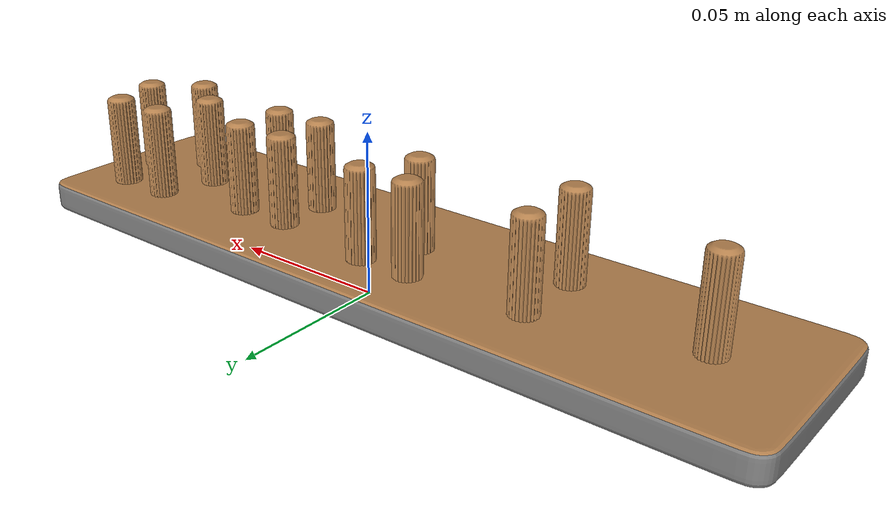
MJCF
<mujoco model="base">
  <compiler angle="radian" meshdir="assets" texturedir="assets" autolimits="true"/>
  <default>
    <default class="visual">
      <geom group="2" type="mesh" contype="0" conaffinity="0" euler="1.57 0 0"/>
    </default>
    <default class="collision">
      <geom group="3" type="mesh" euler="1.57 0 0" density="500" mass="250" friction="10.5 1 0.1" solimp="0.95 0.99 0.001" solref="0.004 1"/>
    </default>
  </default>
  <asset>
    <texture type="2d" name="TexturesCom_Wood_MapleVeneer_512_albedo" file="TexturesCom_Wood_MapleVeneer_512_albedo.png"/>
    <material name="Wood_Pillar_mat" texture="TexturesCom_Wood_MapleVeneer_512_albedo" specular="0.5" shininess="0.5"/>
    <material name="Wood_a_mat" texture="TexturesCom_Wood_MapleVeneer_512_albedo" specular="0.5" shininess="0.5"/>
    <material name="Wood_b_mat" specular="0.5" shininess="0.06311792" rgba="0.500000 0.500000 0.500000 1.000000"/>
    <mesh file="base_0.obj"/>
    <mesh file="base_1.obj"/>
    <mesh file="base_2.obj"/>
    <mesh file="base_collision_0.obj"/>
    <mesh file="base_collision_1.obj"/>
    <mesh file="base_collision_2.obj"/>
    <mesh file="base_collision_3.obj"/>
    <mesh file="base_collision_4.obj" scale="0.7 1.2 0.7"/>
    <mesh file="base_collision_5.obj"/>
    <mesh file="base_collision_6.obj" scale="1 1 1"/>
    <mesh file="base_collision_7.obj"/>
    <mesh file="base_collision_8.obj"/>
    <mesh file="base_collision_9.obj" scale="0.7 1 0.7"/>
    <mesh file="base_collision_10.obj"/>
    <mesh file="base_collision_11.obj" scale="0.8 1 0.8"/>
    <mesh file="base_collision_12.obj" scale="0.8 1 0.8"/>
    <mesh file="base_collision_13.obj"/>
    <mesh file="base_collision_14.obj"/>
    <mesh file="base_collision_15.obj"/>
    <mesh file="base_collision_16.obj"/>
  </asset>
  <worldbody>
    <body name="base">
      <geom mesh="base_0" material="Wood_Pillar_mat" class="visual"/>
      <site name="circle_site" type="box" size=".015 .02 .015" pos="-.105 -0.01 0.03" euler="1.5708 0 0" rgba="1 0 0 0" />
      <site name="triangle_site" type="box" size=".015 .02 .015" pos="-.05 -0.015 0.03" euler="1.5708 0 0" rgba="1 1 0 0" />
      <site name="cube_site" type="box" size=".015 .02 .015" pos="0 -0.01 0.03" euler="1.5708 0 0" rgba="1 1 1 0" />
      <site name="pentagon_site" type="box" size=".015 .02 .015" pos=".05 -0.01 0.03" euler="1.5708 0 0" rgba="0 1 0 0" />
      <site name="rectangle_site" type="box" size=".015 .02 .015" pos=".105 -0.01 0.03" euler="1.5708 0 0" rgba="0 1 1 0" />

      <geom mesh="base_1" material="Wood_a_mat" class="visual"/>
      <geom mesh="base_2" material="Wood_b_mat" class="visual"/>
      <geom mesh="base_collision_0" rgba="0.9630859504259922 0.4774302957265909 0.6799406178539847 1" class="collision"/>
      <body name="triangle">
      <geom mesh="base_collision_4" pos= "-0.0012 -0.006 -0.008" rgba="0.8107316607824177 0.5276161191525742 0.16038745811909683 1" class="collision"/>
      <geom mesh="base_collision_4" pos="0.0075 0.0105 -0.008" rgba="0.8107316607824177 0.5276161191525742 0.16038745811909683 1" class="collision"/>
      <geom mesh="base_collision_4" pos="-0.010 0.0105 -0.008" rgba="0.8107316607824177 0.5276161191525742 0.16038745811909683 1" class="collision"/>
      </body>

      <body name="cube" pos="0.054 -.0045 0">
      <geom mesh="base_collision_4" pos="0.0078 -0.006 -0.008" rgba="0.8107316607824177 0.5276161191525742 0.16038745811909683 1" class="collision"/>
      <geom mesh="base_collision_4" pos="-0.0105 -0.006 -0.008" rgba="0.8107316607824177 0.5276161191525742 0.16038745811909683 1" class="collision"/>
      <geom mesh="base_collision_4" pos="0.008 0.011 -0.008" rgba="0.8107316607824177 0.5276161191525742 0.16038745811909683 1" class="collision"/>
      <geom mesh="base_collision_4" pos="-0.01 0.011 -0.008" rgba="0.8107316607824177 0.5276161191525742 0.16038745811909683 1" class="collision"/>
      </body>

      <body name="circle">
      <geom mesh="base_collision_4" pos="-0.0965 -0.0001 -0.0075" rgba="0.8107316607824177 0.5276161191525742 0.16038745811909683 1" class="collision"/>
      </body>

      <geom mesh="base_collision_7" rgba="0.1007542726995565 0.35798038443467917 0.7818582528927761 1" class="collision"/>
      <geom mesh="base_collision_8" rgba="0.4785593537799713 0.7198020674286586 0.8088860590889941 1" class="collision"/>

      <body name="pentagon">
      <geom mesh="base_collision_9" pos="0.0345 -0.005 0" rgba="0.6922585299924209 0.46355723941482385 0.5851875220217875 1" class="collision"/>
      <geom mesh="base_collision_9" pos="0.029 0.013 0" rgba="0.6922585299924209 0.46355723941482385 0.5851875220217875 1" class="collision"/>

      <geom mesh="base_collision_9" pos="0.01 0.012 0" rgba="0.6922585299924209 0.46355723941482385 0.5851875220217875 1" class="collision"/>

      <geom mesh="base_collision_9" pos="0.0195 -0.0163 0" rgba="0.6922585299924209 0.46355723941482385 0.5851875220217875 1" class="collision"/>

      <geom mesh="base_collision_9" pos="0.0043 -0.0055 0" rgba="0.6922585299924209 0.46355723941482385 0.5851875220217875 1" class="collision"/>
      </body>

      <body name="rectangle">
        <geom mesh="base_collision_11" pos="-0.01025 -0.005 0" rgba="0.8680534899849732 0.9247820525664353 0.5551147097311501 1" class="collision"/>
        <geom mesh="base_collision_12" pos="-0.01025 -0.0005 0" rgba="0.825175892949324 0.3461671545063314 0.6109634667854636 1" class="collision"/>
      </body>

      <geom mesh="base_collision_13" rgba="0.009220356590398993 0.5186540702034904 0.7236228244609376 1" class="collision"/>
      <geom mesh="base_collision_14" rgba="0.6521379269486127 0.6937444611155249 0.8827536298512864 1" class="collision"/>
      <geom mesh="base_collision_15" rgba="0.7385092810902892 0.6549390193577855 0.7382449644263097 1" class="collision"/>
      <geom mesh="base_collision_16" rgba="0.8741106456951283 0.2869163512130948 0.2268793163220043 1" class="collision"/>
    </body>
  </worldbody>
</mujoco>
